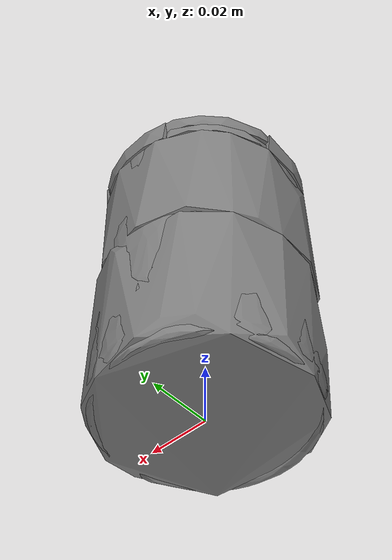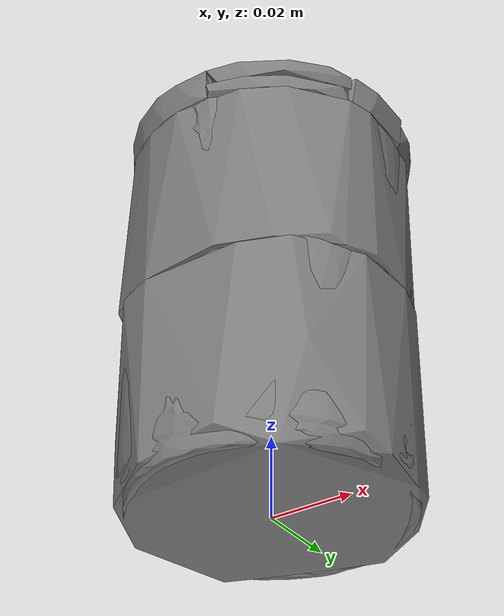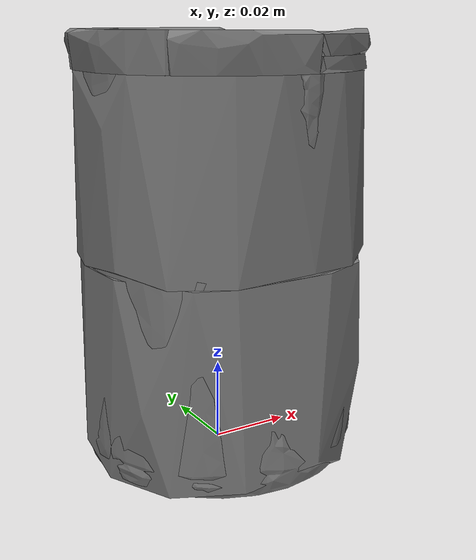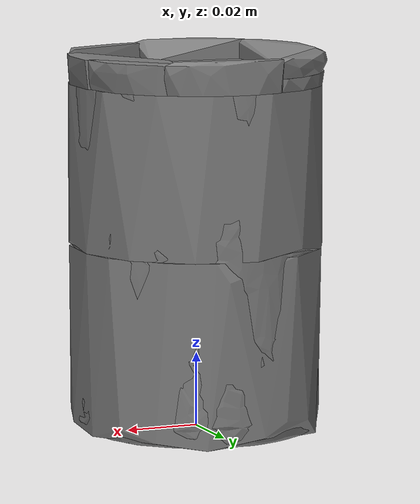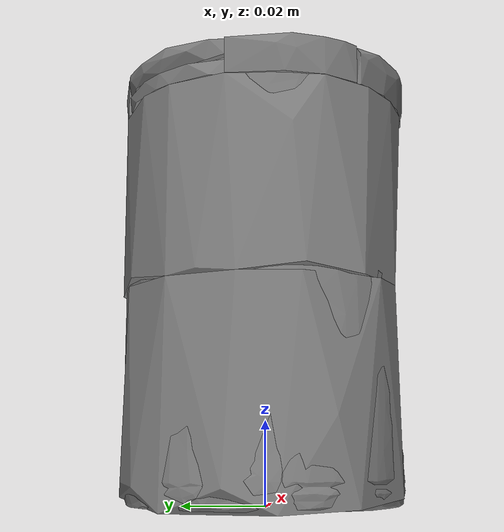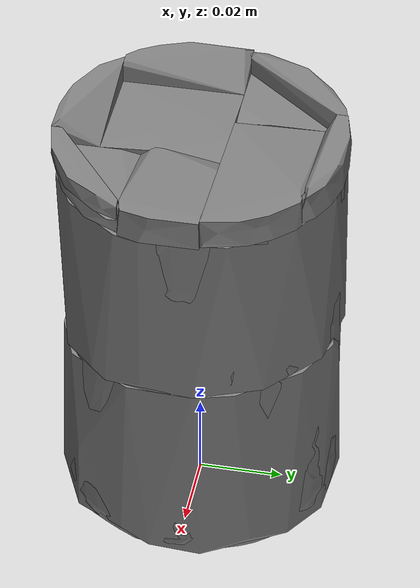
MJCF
<mujoco model="tomato_soup_can">
  <asset>
    <mesh file="../../meshes/ycb/tomato_soup_can/simple_mesh.stl" name="tomato_soup_can_mesh" scale="1 1 1"/>
    <mesh file="../../meshes/ycb/tomato_soup_can/tomato_soup_can_hull_1.stl" name="tomato_soup_can_hull_mesh_1" scale="1 1 1"/>
    <mesh file="../../meshes/ycb/tomato_soup_can/tomato_soup_can_hull_2.stl" name="tomato_soup_can_hull_mesh_2" scale="1 1 1"/>
    <mesh file="../../meshes/ycb/tomato_soup_can/tomato_soup_can_hull_3.stl" name="tomato_soup_can_hull_mesh_3" scale="1 1 1"/>
    <mesh file="../../meshes/ycb/tomato_soup_can/tomato_soup_can_hull_4.stl" name="tomato_soup_can_hull_mesh_4" scale="1 1 1"/>
    <mesh file="../../meshes/ycb/tomato_soup_can/tomato_soup_can_hull_5.stl" name="tomato_soup_can_hull_mesh_5" scale="1 1 1"/>
    <mesh file="../../meshes/ycb/tomato_soup_can/tomato_soup_can_hull_6.stl" name="tomato_soup_can_hull_mesh_6" scale="1 1 1"/>
    <mesh file="../../meshes/ycb/tomato_soup_can/tomato_soup_can_hull_7.stl" name="tomato_soup_can_hull_mesh_7" scale="1 1 1"/>
    <mesh file="../../meshes/ycb/tomato_soup_can/tomato_soup_can_hull_8.stl" name="tomato_soup_can_hull_mesh_8" scale="1 1 1"/>
    <mesh file="../../meshes/ycb/tomato_soup_can/tomato_soup_can_hull_9.stl" name="tomato_soup_can_hull_mesh_9" scale="1 1 1"/>
    <mesh file="../../meshes/ycb/tomato_soup_can/tomato_soup_can_hull_10.stl" name="tomato_soup_can_hull_mesh_10" scale="1 1 1"/>
    <mesh file="../../meshes/ycb/tomato_soup_can/tomato_soup_can_hull_11.stl" name="tomato_soup_can_hull_mesh_11" scale="1 1 1"/>
    <mesh file="../../meshes/ycb/tomato_soup_can/tomato_soup_can_hull_12.stl" name="tomato_soup_can_hull_mesh_12" scale="1 1 1"/>
  </asset>
  <worldbody>
    <body>
      <body name="object">
        <geom pos="0 0 0" mesh="tomato_soup_can_mesh" type="mesh" contype="0" conaffinity="0" group="1"/>
        <geom pos="0 0 0" mesh="tomato_soup_can_hull_mesh_1" type="mesh" margin="0.001" solimp="0.998 0.998 0.001" solref="0.001 1" density="400" friction="0.95 0.3 0.1" group="0" condim="4"/>
        <geom pos="0 0 0" mesh="tomato_soup_can_hull_mesh_2" type="mesh" margin="0.001" solimp="0.998 0.998 0.001" solref="0.001 1" density="400" friction="0.95 0.3 0.1" group="0" condim="4"/>
        <geom pos="0 0 0" mesh="tomato_soup_can_hull_mesh_3" type="mesh" margin="0.001" solimp="0.998 0.998 0.001" solref="0.001 1" density="400" friction="0.95 0.3 0.1" group="0" condim="4"/>
        <geom pos="0 0 0" mesh="tomato_soup_can_hull_mesh_4" type="mesh" margin="0.001" solimp="0.998 0.998 0.001" solref="0.001 1" density="400" friction="0.95 0.3 0.1" group="0" condim="4"/>
        <geom pos="0 0 0" mesh="tomato_soup_can_hull_mesh_5" type="mesh" margin="0.001" solimp="0.998 0.998 0.001" solref="0.001 1" density="400" friction="0.95 0.3 0.1" group="0" condim="4"/>
        <geom pos="0 0 0" mesh="tomato_soup_can_hull_mesh_6" type="mesh" margin="0.001" solimp="0.998 0.998 0.001" solref="0.001 1" density="400" friction="0.95 0.3 0.1" group="0" condim="4"/>
        <geom pos="0 0 0" mesh="tomato_soup_can_hull_mesh_7" type="mesh" margin="0.001" solimp="0.998 0.998 0.001" solref="0.001 1" density="400" friction="0.95 0.3 0.1" group="0" condim="4"/>
        <geom pos="0 0 0" mesh="tomato_soup_can_hull_mesh_8" type="mesh" margin="0.001" solimp="0.998 0.998 0.001" solref="0.001 1" density="400" friction="0.95 0.3 0.1" group="0" condim="4"/>
        <geom pos="0 0 0" mesh="tomato_soup_can_hull_mesh_9" type="mesh" margin="0.001" solimp="0.998 0.998 0.001" solref="0.001 1" density="400" friction="0.95 0.3 0.1" group="0" condim="4"/>
        <geom pos="0 0 0" mesh="tomato_soup_can_hull_mesh_10" type="mesh" margin="0.001" solimp="0.998 0.998 0.001" solref="0.001 1" density="400" friction="0.95 0.3 0.1" group="0" condim="4"/>
        <geom pos="0 0 0" mesh="tomato_soup_can_hull_mesh_11" type="mesh" margin="0.001" solimp="0.998 0.998 0.001" solref="0.001 1" density="400" friction="0.95 0.3 0.1" group="0" condim="4"/>
        <geom pos="0 0 0" mesh="tomato_soup_can_hull_mesh_12" type="mesh" margin="0.001" solimp="0.998 0.998 0.001" solref="0.001 1" density="400" friction="0.95 0.3 0.1" group="0" condim="4"/>
      </body>
      <site rgba="0 0 0 0" size="0.005" pos="0 0 -0.001" name="bottom_site"/>
      <site rgba="0 0 0 0" size="0.005" pos="0 0 0.02" name="top_site"/>
      <site rgba="0 0 0 0" size="0.005" pos="0.0375 0.02 0" name="horizontal_radius_site"/>
    </body>
  </worldbody>
</mujoco>
